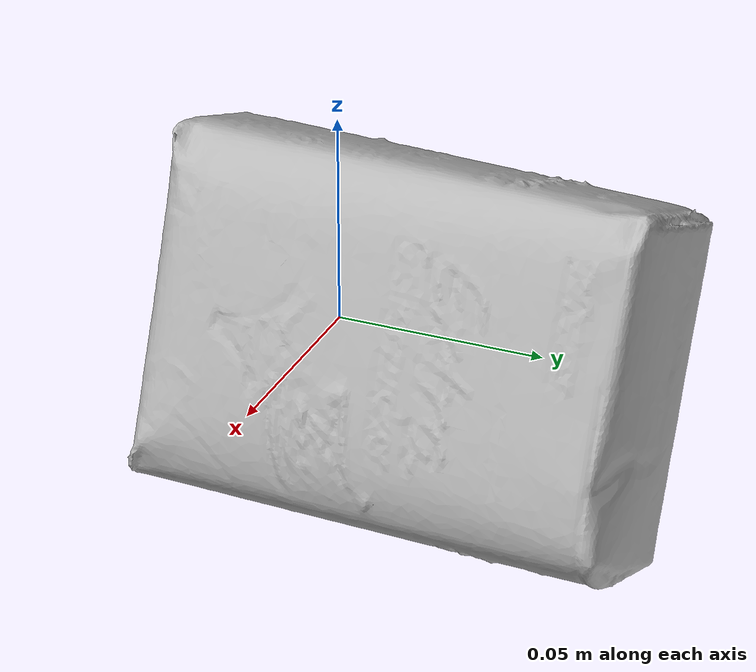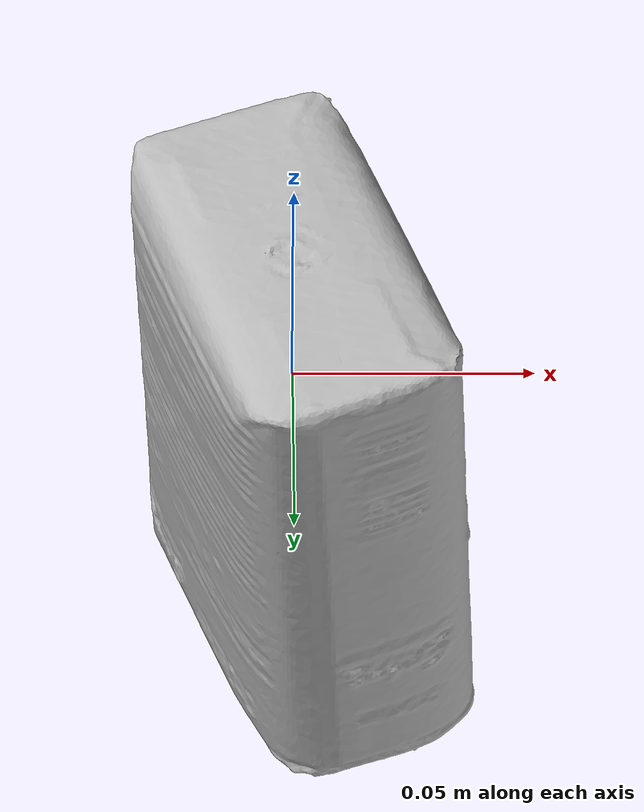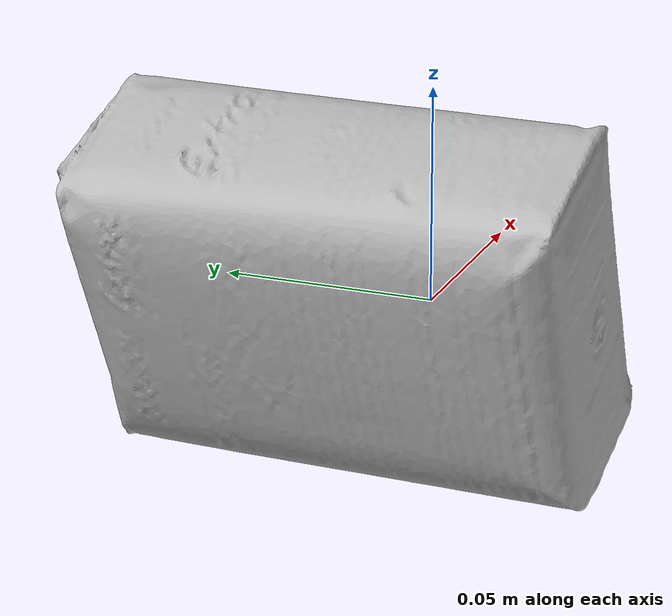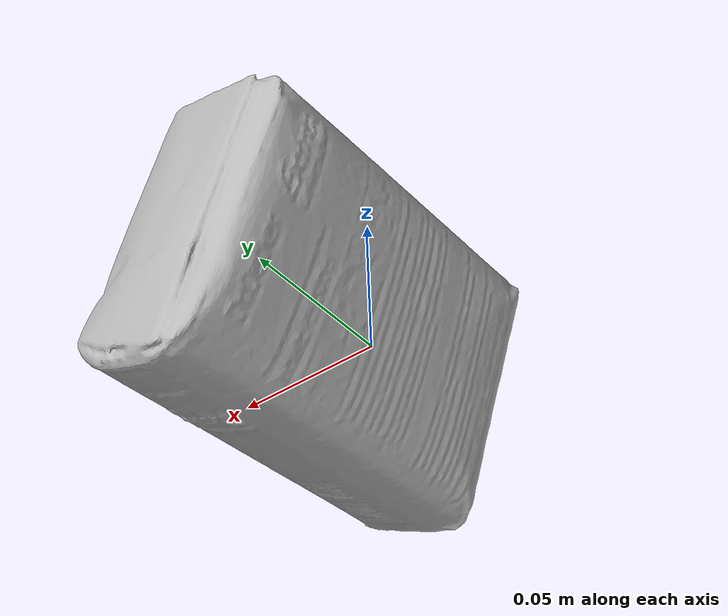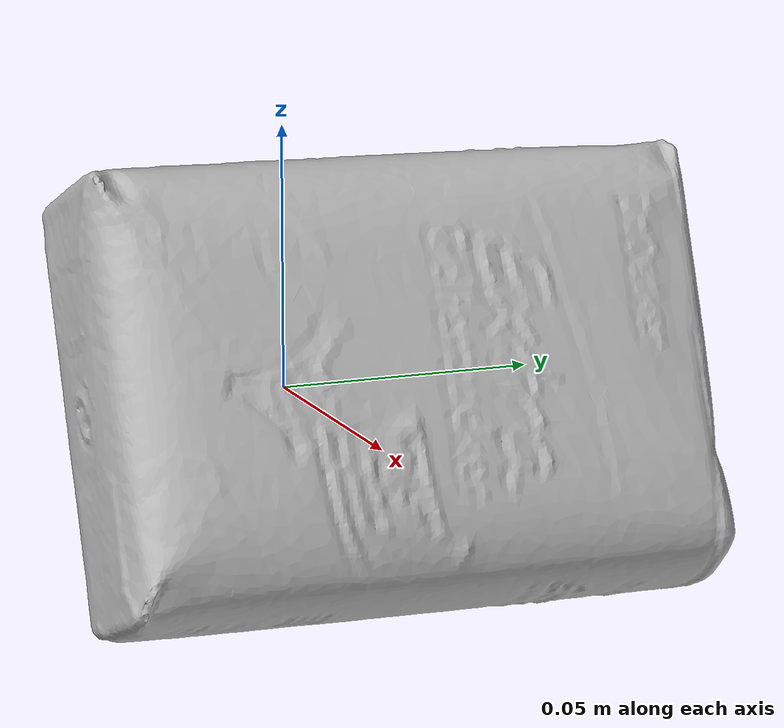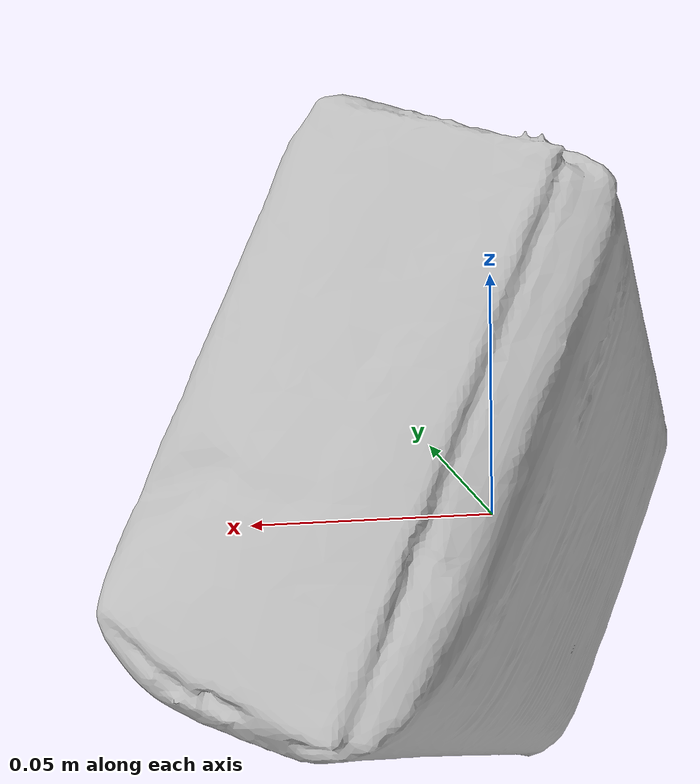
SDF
<?xml version='1.0'?>
<sdf version="1.4">
  <model name="JamSugar">
    <static>false</static>
    <link name="link">
      <inertial>
        <pose>0.002435960221607512 0.020388271507560958 -0.0011037698622965674 -1.5479303892973872 0.3786654035856033 3.1182998895038856</pose>
        <mass>0.04935075820191681</mass>
        <inertia>
          <ixx>8.433870734461068e-05</ixx>
          <ixy>-7.722578197729678e-21</ixy>
          <ixz>2.6056571325432447e-21</ixz>
          <iyy>6.640748023451659e-05</iyy>
          <iyz>5.358277370780002e-21</iyz>
          <izz>3.7680320584356016e-05</izz>
        </inertia>
      </inertial>
      <collision name="collision">
        <geometry>
          <mesh>
            <!-- Use a downsampled mesh for collisions -->
            <uri>model:///JamSugar/JamSugar_250_collision.obj</uri>
	        </mesh>
        </geometry>
        <surface>
      </surface>
      </collision>
      <visual name="visual">
        <geometry>
          <mesh>
            <uri>model:///JamSugar/JamSugar_25k_tex.obj</uri>
	        </mesh>
        </geometry>
        <material>
          <script>
            <uri>model:///JamSugar/JamSugar.material</uri>
            <name>JamSugar</name>
          </script>
        </material>
      </visual>
    </link>
  </model>
</sdf>
